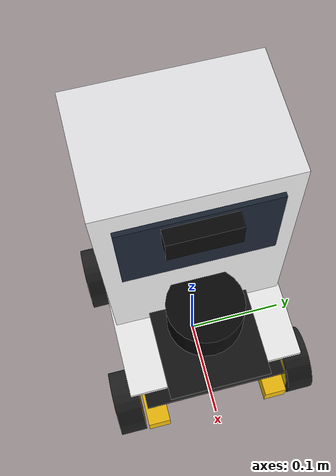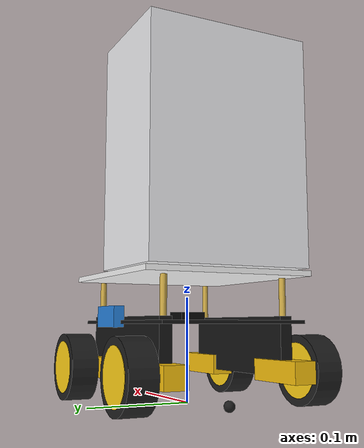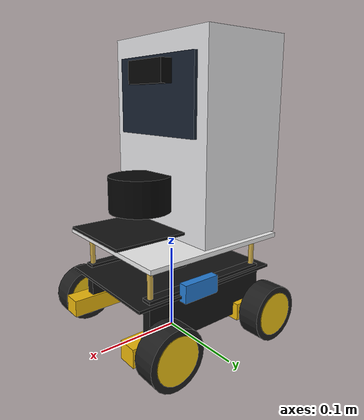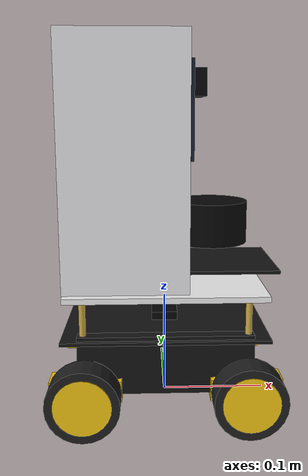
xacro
<?xml version="1.0"?>
<robot name="luminax" xmlns:xacro="http://www.ros.org/wiki/xacro">

  <!-- Drive Geometry -->
  <xacro:property name="wheel_radius"     value="0.0325"/>  <!-- 65 mm diameter TT wheel -> r = 32.5 mm -->
  <xacro:property name="wheel_width"      value="0.026"/>   <!-- 26 mm wheel tread width -->
  <xacro:property name="wheel_separation" value="0.178"/>   <!-- 178 mm track width (150 mm inner distance + 26 mm tire) -->
  <xacro:property name="wheelbase"        value="0.145"/>   <!-- 145 mm front-to-rear axle distance -->
  <xacro:property name="wheel_mass"       value="0.045"/>   <!-- ~45 g per wheel -->

  <!-- Lower Chassis (Black Acrylic Base + Motor Brackets) -->
  <xacro:property name="lower_deck_x"     value="0.190"/>   <!-- 190 mm length -->
  <xacro:property name="lower_deck_y"     value="0.140"/>   <!-- 140 mm width -->
  <xacro:property name="lower_deck_z"     value="0.003"/>   <!-- 3 mm acrylic plate -->
  <xacro:property name="lower_deck_z_pos" value="0.0765"/>  <!-- Lower plate center sits 76.5 mm above ground -->
  <xacro:property name="lower_deck_mass"  value="0.95"/>    <!-- Lower chassis, battery pack, motor drivers ~ 0.95 kg -->

  <!-- Brass Standoffs -->
  <xacro:property name="standoff_h"       value="0.040"/>   <!-- Exactly 40 mm brass standoffs (verified Page 2) -->
  <xacro:property name="standoff_r"       value="0.003"/>   <!-- 6 mm diameter -->

  <!-- Upper Chassis (White Acrylic Deck) -->
  <xacro:property name="upper_deck_x"     value="0.180"/>   <!-- 180 mm length -->
  <xacro:property name="upper_deck_y"     value="0.165"/>   <!-- 165 mm width (verified Page 3) -->
  <xacro:property name="upper_deck_z"     value="0.005"/>   <!-- 5 mm acrylic plate -->
  <xacro:property name="upper_deck_z_pos" value="0.1205"/>  <!-- Upper plate center sits 120.5 mm above ground -->
  <xacro:property name="upper_deck_mass"  value="0.35"/>    <!-- Upper deck plate + hardware ~ 0.35 kg -->

  <!-- LiDAR Sensor (Slamtec RPLiDAR A1) -->
  <xacro:property name="lidar_riser_x"    value="0.120"/>   <!-- Black riser plate length -->
  <xacro:property name="lidar_riser_y"    value="0.095"/>   <!-- Black riser plate width -->
  <xacro:property name="lidar_riser_z"    value="0.003"/>
  <xacro:property name="lidar_x"          value="0.045"/>   <!-- Mounted forward on upper deck (+45 mm) -->
  <xacro:property name="lidar_y"          value="0.000"/>   <!-- Centered laterally -->
  <xacro:property name="lidar_z"          value="0.175"/>   <!-- Exact optical scan plane height = 175 mm above ground (Page 4) -->
  <xacro:property name="lidar_yaw"        value="0.0"/>     <!-- Default forward heading (set 3.14159 if cable orientation requires) -->
  <xacro:property name="lidar_mass"       value="0.17"/>    <!-- 170 g RPLiDAR A1 -->

  <!-- 3D Printed Head / Body Shell -->
  <xacro:property name="head_x"           value="-0.035"/>  <!-- Mounted rearward to clear LiDAR beam -->
  <xacro:property name="head_z"           value="0.235"/>   <!-- Center height of body shell -->
  <xacro:property name="head_length"      value="0.110"/>
  <xacro:property name="head_width"       value="0.160"/>
  <xacro:property name="head_height"      value="0.220"/>
  <xacro:property name="head_mass"        value="0.45"/>    <!-- Shell + Raspberry Pi 5 + display ~ 0.45 kg -->

  <!-- Camera Offset (inside head screen bezel) -->
  <xacro:property name="camera_x"         value="0.025"/>
  <xacro:property name="camera_y"         value="0.000"/>
  <xacro:property name="camera_z"         value="0.305"/>   <!-- 305 mm above ground -->

  <!-- IMU Offset (on lower deck) -->
  <xacro:property name="imu_x"            value="0.000"/>
  <xacro:property name="imu_y"            value="0.000"/>
  <xacro:property name="imu_z"            value="0.082"/>

  <!-- Wheel Axle Height above ground -->
  <xacro:property name="axle_height"      value="${wheel_radius}"/>
  <xacro:property name="PI"               value="3.14159265359"/>

  <!-- ============================================================
       COLOR MATERIALS
       ============================================================ -->
  <material name="chassis_black"><color rgba="0.08 0.08 0.08 1.0"/></material>
  <material name="deck_white">   <color rgba="0.96 0.96 0.96 1.0"/></material>
  <material name="shell_white">  <color rgba="0.93 0.93 0.94 1.0"/></material>
  <material name="rim_yellow">   <color rgba="0.98 0.80 0.08 1.0"/></material>
  <material name="motor_yellow"> <color rgba="0.95 0.74 0.05 1.0"/></material>
  <material name="rubber_black"> <color rgba="0.12 0.12 0.12 1.0"/></material>
  <material name="brass_gold">   <color rgba="0.82 0.68 0.28 1.0"/></material>
  <material name="sensor_black"> <color rgba="0.03 0.03 0.03 1.0"/></material>
  <material name="screen_dark">  <color rgba="0.10 0.14 0.20 1.0"/></material>
  <material name="accent_blue">  <color rgba="0.15 0.50 0.85 1.0"/></material>

  <!-- ============================================================
       REUSABLE INERTIA MACROS
       ============================================================ -->
  <xacro:macro name="box_inertia" params="m x y z">
    <inertial>
      <mass value="${m}"/>
      <inertia ixx="${m*(y*y+z*z)/12.0}" ixy="0" ixz="0"
               iyy="${m*(x*x+z*z)/12.0}" iyz="0"
               izz="${m*(x*x+y*y)/12.0}"/>
    </inertial>
  </xacro:macro>

  <xacro:macro name="cylinder_inertia" params="m r l">
    <inertial>
      <mass value="${m}"/>
      <inertia ixx="${m*(3*r*r+l*l)/12.0}" ixy="0" ixz="0"
               iyy="${m*(3*r*r+l*l)/12.0}" iyz="0"
               izz="${m*r*r/2.0}"/>
    </inertial>
  </xacro:macro>

  <!-- ============================================================
       1. ROOT FRAMES
       ============================================================ -->
  <!-- base_footprint : Ground projection at z = 0 -->
  <link name="base_footprint"/>

  <!-- base_link : Main reference frame on the ground plane at robot footprint center -->
  <link name="base_link">
    <!-- Visual: Lower Chassis Black Plate -->
    <visual>
      <origin xyz="0 0 ${lower_deck_z_pos}" rpy="0 0 0"/>
      <geometry><box size="${lower_deck_x} ${lower_deck_y} ${lower_deck_z}"/></geometry>
      <material name="chassis_black"/>
    </visual>
    <collision>
      <origin xyz="0 0 ${lower_deck_z_pos}" rpy="0 0 0"/>
      <geometry><box size="${lower_deck_x} ${lower_deck_y} ${lower_deck_z}"/></geometry>
    </collision>

    <!-- Visual: Left Bracket Leg -->
    <visual>
      <origin xyz="0 0.060 ${(lower_deck_z_pos + axle_height)/2}" rpy="0 0 0"/>
      <geometry><box size="0.160 0.012 ${lower_deck_z_pos - axle_height + 0.01}"/></geometry>
      <material name="chassis_black"/>
    </visual>
    <!-- Visual: Right Bracket Leg -->
    <visual>
      <origin xyz="0 -0.060 ${(lower_deck_z_pos + axle_height)/2}" rpy="0 0 0"/>
      <geometry><box size="0.160 0.012 ${lower_deck_z_pos - axle_height + 0.01}"/></geometry>
      <material name="chassis_black"/>
    </visual>

    <!-- Visual: 4 Yellow TT Gear Motor Bodies -->
    <visual>
      <origin xyz="${wheelbase/2} 0.062 ${axle_height}" rpy="0 0 0"/>
      <geometry><box size="0.065 0.022 0.020"/></geometry>
      <material name="motor_yellow"/>
    </visual>
    <visual>
      <origin xyz="${wheelbase/2} -0.062 ${axle_height}" rpy="0 0 0"/>
      <geometry><box size="0.065 0.022 0.020"/></geometry>
      <material name="motor_yellow"/>
    </visual>
    <visual>
      <origin xyz="${-wheelbase/2} 0.062 ${axle_height}" rpy="0 0 0"/>
      <geometry><box size="0.065 0.022 0.020"/></geometry>
      <material name="motor_yellow"/>
    </visual>
    <visual>
      <origin xyz="${-wheelbase/2} -0.062 ${axle_height}" rpy="0 0 0"/>
      <geometry><box size="0.065 0.022 0.020"/></geometry>
      <material name="motor_yellow"/>
    </visual>

    <!-- Visual: 4 Brass Standoff Pillars -->
    <visual>
      <origin xyz="0.075 0.060 ${lower_deck_z_pos + standoff_h/2}" rpy="0 0 0"/>
      <geometry><cylinder radius="${standoff_r}" length="${standoff_h}"/></geometry>
      <material name="brass_gold"/>
    </visual>
    <visual>
      <origin xyz="0.075 -0.060 ${lower_deck_z_pos + standoff_h/2}" rpy="0 0 0"/>
      <geometry><cylinder radius="${standoff_r}" length="${standoff_h}"/></geometry>
      <material name="brass_gold"/>
    </visual>
    <visual>
      <origin xyz="-0.075 0.060 ${lower_deck_z_pos + standoff_h/2}" rpy="0 0 0"/>
      <geometry><cylinder radius="${standoff_r}" length="${standoff_h}"/></geometry>
      <material name="brass_gold"/>
    </visual>
    <visual>
      <origin xyz="-0.075 -0.060 ${lower_deck_z_pos + standoff_h/2}" rpy="0 0 0"/>
      <geometry><cylinder radius="${standoff_r}" length="${standoff_h}"/></geometry>
      <material name="brass_gold"/>
    </visual>

    <!-- Visual: Upper Chassis White Deck Plate -->
    <visual>
      <origin xyz="0 0 ${upper_deck_z_pos}" rpy="0 0 0"/>
      <geometry><box size="${upper_deck_x} ${upper_deck_y} ${upper_deck_z}"/></geometry>
      <material name="deck_white"/>
    </visual>
    <collision>
      <origin xyz="0 0 ${upper_deck_z_pos}" rpy="0 0 0"/>
      <geometry><box size="${upper_deck_x} ${upper_deck_y} ${upper_deck_z}"/></geometry>
    </collision>

    <!-- Visual: Battery Gauge Display on Side -->
    <visual>
      <origin xyz="0.020 0.072 ${lower_deck_z_pos + 0.005}" rpy="0 0 0"/>
      <geometry><box size="0.045 0.010 0.020"/></geometry>
      <material name="accent_blue"/>
    </visual>

    <xacro:box_inertia m="${lower_deck_mass + upper_deck_mass}" x="${lower_deck_x}" y="${lower_deck_y}" z="${upper_deck_z_pos}"/>
  </link>

  <joint name="base_footprint_joint" type="fixed">
    <parent link="base_footprint"/>
    <child  link="base_link"/>
    <origin xyz="0 0 0" rpy="0 0 0"/>
  </joint>

  <!-- ============================================================
       2. 4WD DRIVE WHEELS (Skid-Steer / 4-Wheel Drive)
       ============================================================ -->
  <xacro:macro name="drive_wheel" params="prefix pos_x side_y">
    <link name="${prefix}_wheel_link">
      <!-- Rubber Tire Tread (Black) -->
      <visual>
        <origin xyz="0 0 0" rpy="${PI/2} 0 0"/>
        <geometry><cylinder radius="${wheel_radius}" length="${wheel_width}"/></geometry>
        <material name="rubber_black"/>
      </visual>
      <!-- Yellow Rim Center -->
      <visual>
        <origin xyz="0 0 0" rpy="${PI/2} 0 0"/>
        <geometry><cylinder radius="${wheel_radius * 0.78}" length="${wheel_width + 0.001}"/></geometry>
        <material name="rim_yellow"/>
      </visual>
      <collision>
        <origin xyz="0 0 0" rpy="${PI/2} 0 0"/>
        <geometry><cylinder radius="${wheel_radius}" length="${wheel_width}"/></geometry>
      </collision>
      <xacro:cylinder_inertia m="${wheel_mass}" r="${wheel_radius}" l="${wheel_width}"/>
    </link>

    <joint name="${prefix}_wheel_joint" type="continuous">
      <parent link="base_link"/>
      <child  link="${prefix}_wheel_link"/>
      <origin xyz="${pos_x} ${side_y} ${axle_height}" rpy="0 0 0"/>
      <axis xyz="0 1 0"/>
    </joint>
  </xacro:macro>

  <!-- 4 Independent Drive Wheels (Skid-Steer) -->
  <xacro:drive_wheel prefix="front_left"  pos_x="${ wheelbase/2}" side_y="${ wheel_separation/2}"/>
  <xacro:drive_wheel prefix="front_right" pos_x="${ wheelbase/2}" side_y="${-wheel_separation/2}"/>
  <xacro:drive_wheel prefix="rear_left"   pos_x="${-wheelbase/2}" side_y="${ wheel_separation/2}"/>
  <xacro:drive_wheel prefix="rear_right"  pos_x="${-wheelbase/2}" side_y="${-wheel_separation/2}"/>

  <!-- Passive Caster Wheel Link (Virtual / Backwards Compatibility) -->
  <link name="caster_wheel_link">
    <visual>
      <geometry><sphere radius="0.005"/></geometry>
      <material name="rubber_black"/>
    </visual>
    <collision>
      <geometry><sphere radius="0.005"/></geometry>
    </collision>
    <inertial>
      <mass value="0.01"/>
      <inertia ixx="0.000001" ixy="0" ixz="0" iyy="0.000001" iyz="0" izz="0.000001"/>
    </inertial>
  </link>
  <joint name="caster_wheel_joint" type="fixed">
    <parent link="base_link"/>
    <child  link="caster_wheel_link"/>
    <origin xyz="-0.080 0 0.005" rpy="0 0 0"/>
  </joint>

  <link name="laser_frame">
    <!-- Elevated Black Riser Mount Plate -->
    <visual>
      <origin xyz="0 0 -0.040" rpy="0 0 0"/>
      <geometry><box size="${lidar_riser_x} ${lidar_riser_y} ${lidar_riser_z}"/></geometry>
      <material name="chassis_black"/>
    </visual>
    <!-- RPLiDAR A1 Rotating Turret -->
    <visual>
      <origin xyz="0 0 0" rpy="0 0 0"/>
      <geometry><cylinder radius="0.035" length="0.040"/></geometry>
      <material name="sensor_black"/>
    </visual>
    <!-- Secondary Belt Drive Motor on Side -->
    <visual>
      <origin xyz="-0.032 0 -0.010" rpy="0 0 0"/>
      <geometry><cylinder radius="0.012" length="0.025"/></geometry>
      <material name="sensor_black"/>
    </visual>
    <collision>
      <origin xyz="0 0 0" rpy="0 0 0"/>
      <geometry><cylinder radius="0.038" length="0.045"/></geometry>
    </collision>
    <xacro:cylinder_inertia m="${lidar_mass}" r="0.038" l="0.045"/>
  </link>

  <joint name="laser_joint" type="fixed">
    <parent link="base_link"/>
    <child  link="laser_frame"/>
    <origin xyz="${lidar_x} ${lidar_y} ${lidar_z}" rpy="0 0 ${lidar_yaw}"/>
  </joint>

  <!-- Optional lidar_link alias for packages expecting lidar_link frame -->
  <link name="lidar_link"/>
  <joint name="lidar_link_alias_joint" type="fixed">
    <parent link="laser_frame"/>
    <child  link="lidar_link"/>
    <origin xyz="0 0 0" rpy="0 0 0"/>
  </joint>

  <!-- ============================================================
       4. UPPER COMPANION BODY / HEAD SHELL (3D Printed Enclosure)
       ============================================================ -->
  <link name="body_link">
    <!-- Main Upper Body Shell (White) -->
    <visual>
      <origin xyz="0 0 0" rpy="0 0 0"/>
      <geometry><box size="${head_length} ${head_width} ${head_height}"/></geometry>
      <material name="shell_white"/>
    </visual>
    <!-- Recessed Screen Bezel / Face Display Opening -->
    <visual>
      <origin xyz="${head_length/2 + 0.002} 0 0.045" rpy="0 0 0"/>
      <geometry><box size="0.004 0.130 0.085"/></geometry>
      <material name="screen_dark"/>
    </visual>
    <collision>
      <origin xyz="0 0 0" rpy="0 0 0"/>
      <geometry><box size="${head_length} ${head_width} ${head_height}"/></geometry>
    </collision>
    <xacro:box_inertia m="${head_mass}" x="${head_length}" y="${head_width}" z="${head_height}"/>
  </link>

  <joint name="body_joint" type="fixed">
    <parent link="base_link"/>
    <child  link="body_link"/>
    <origin xyz="${head_x} 0 ${head_z}" rpy="0 0 0"/>
  </joint>

  <!-- ============================================================
       5. CAMERA SENSOR (REP-103 Optical Frame)
       ============================================================ -->
  <link name="camera_link">
    <visual>
      <geometry><box size="0.025 0.060 0.025"/></geometry>
      <material name="sensor_black"/>
    </visual>
    <xacro:box_inertia m="0.05" x="0.025" y="0.060" z="0.025"/>
  </link>

  <joint name="camera_joint" type="fixed">
    <parent link="base_link"/>
    <child  link="camera_link"/>
    <origin xyz="${camera_x} ${camera_y} ${camera_z}" rpy="0 0 0"/>
  </joint>

  <link name="camera_optical_frame"/>
  <joint name="camera_optical_joint" type="fixed">
    <parent link="camera_link"/>
    <child  link="camera_optical_frame"/>
    <!-- Rotate body frame to optical frame: z forward, x right, y down -->
    <origin xyz="0 0 0" rpy="${-PI/2} 0 ${-PI/2}"/>
  </joint>

  <!-- Alias camera_optical_link for nodes expecting camera_optical_link -->
  <link name="camera_optical_link"/>
  <joint name="camera_optical_link_alias" type="fixed">
    <parent link="camera_optical_frame"/>
    <child  link="camera_optical_link"/>
    <origin xyz="0 0 0" rpy="0 0 0"/>
  </joint>

  <!-- ============================================================
       6. IMU SENSOR FRAME
       ============================================================ -->
  <link name="imu_link">
    <visual>
      <geometry><box size="0.025 0.025 0.008"/></geometry>
      <material name="sensor_black"/>
    </visual>
    <xacro:box_inertia m="0.02" x="0.025" y="0.025" z="0.008"/>
  </link>

  <joint name="imu_joint" type="fixed">
    <parent link="base_link"/>
    <child  link="imu_link"/>
    <origin xyz="${imu_x} ${imu_y} ${imu_z}" rpy="0 0 0"/>
  </joint>

</robot>
